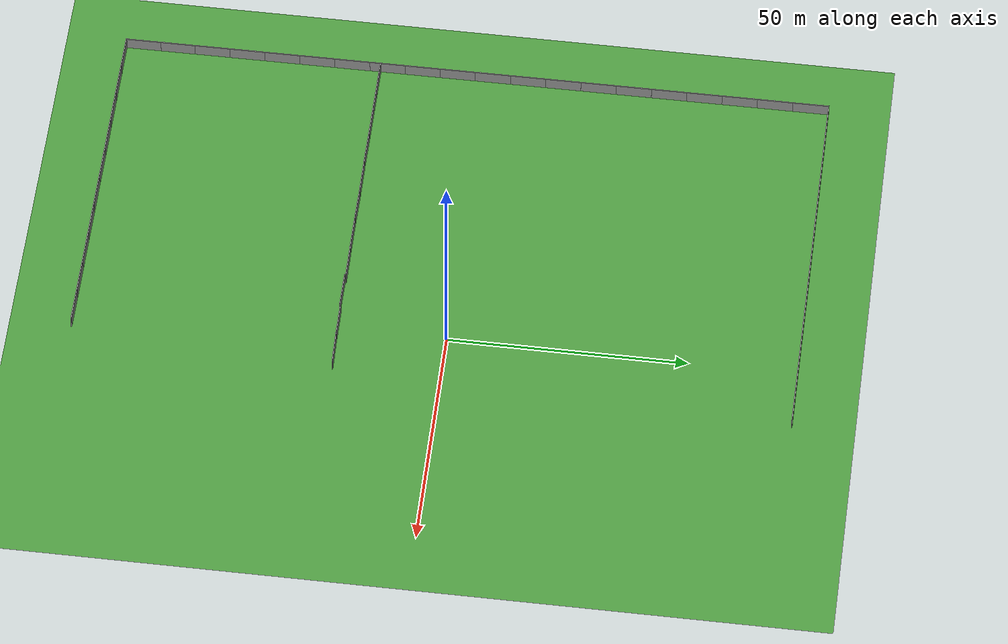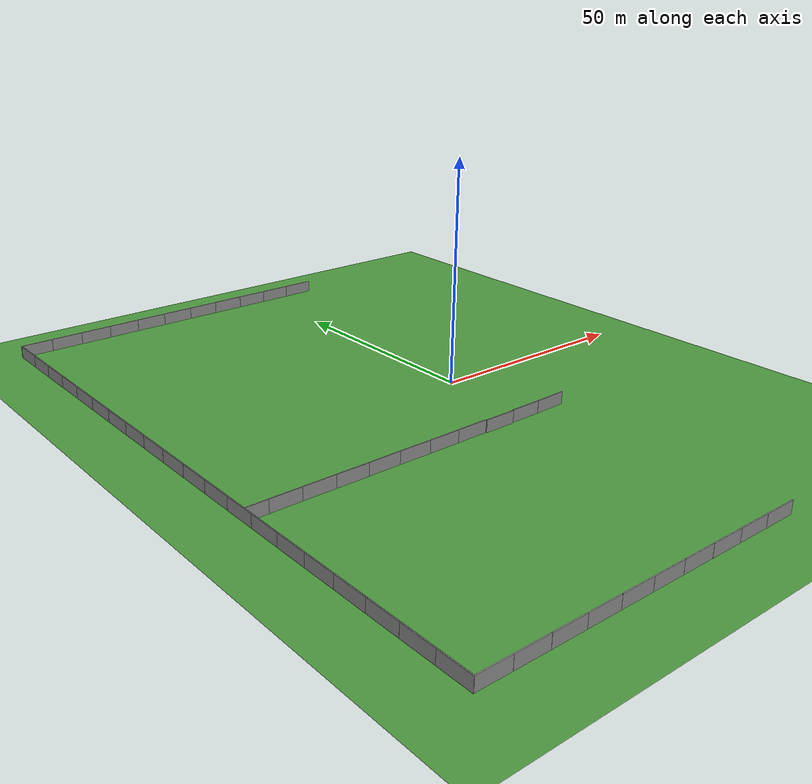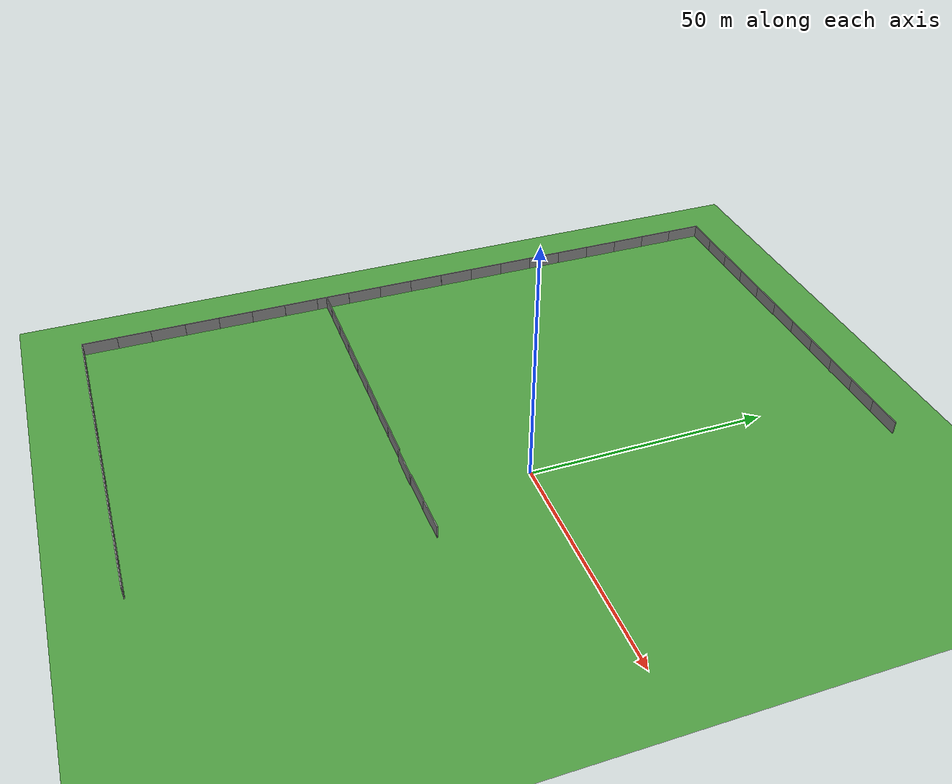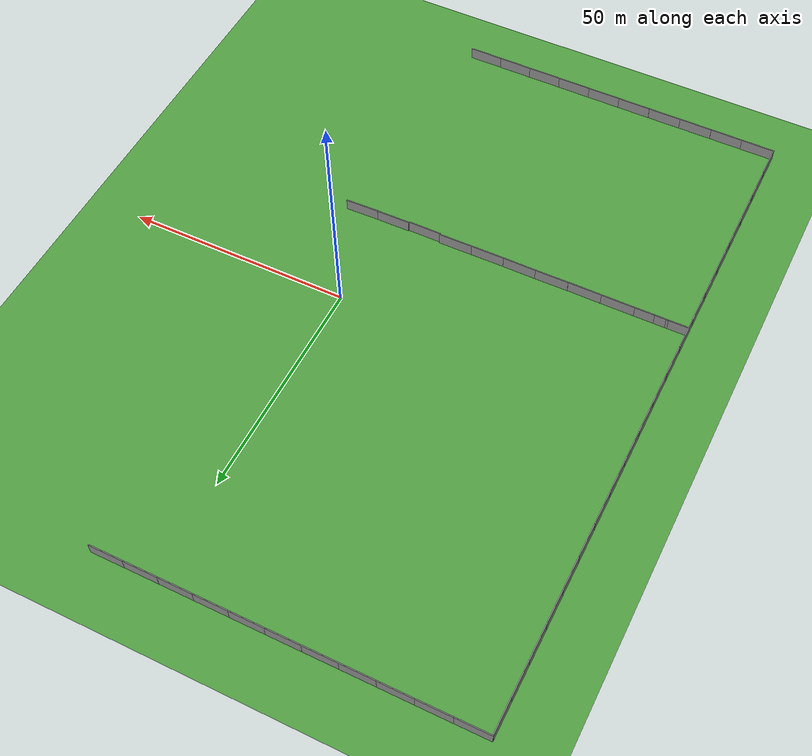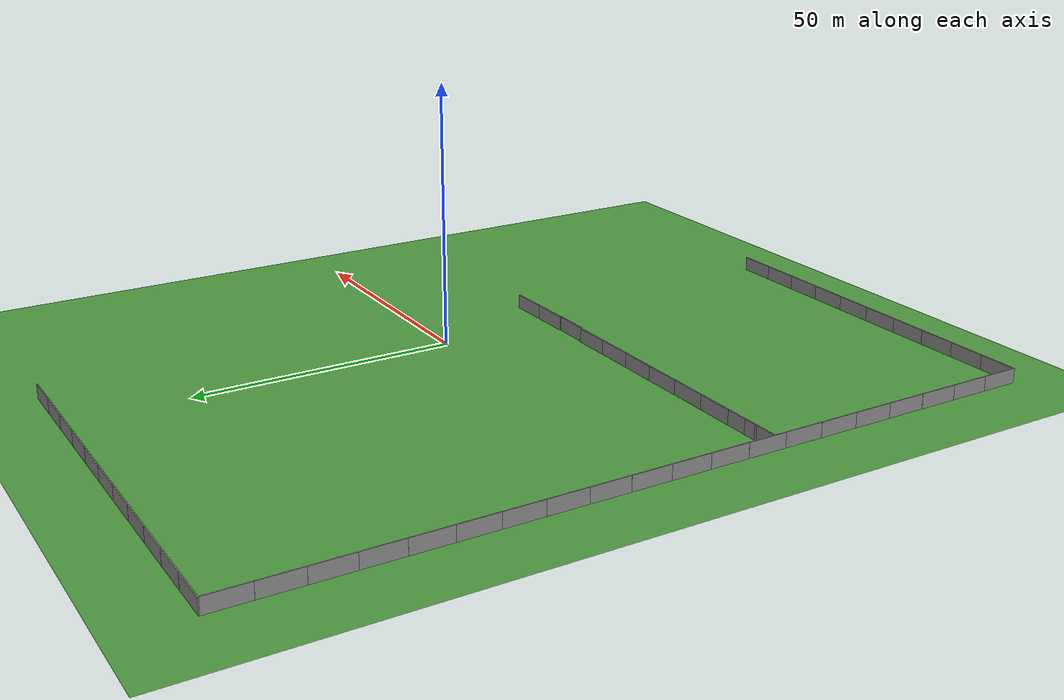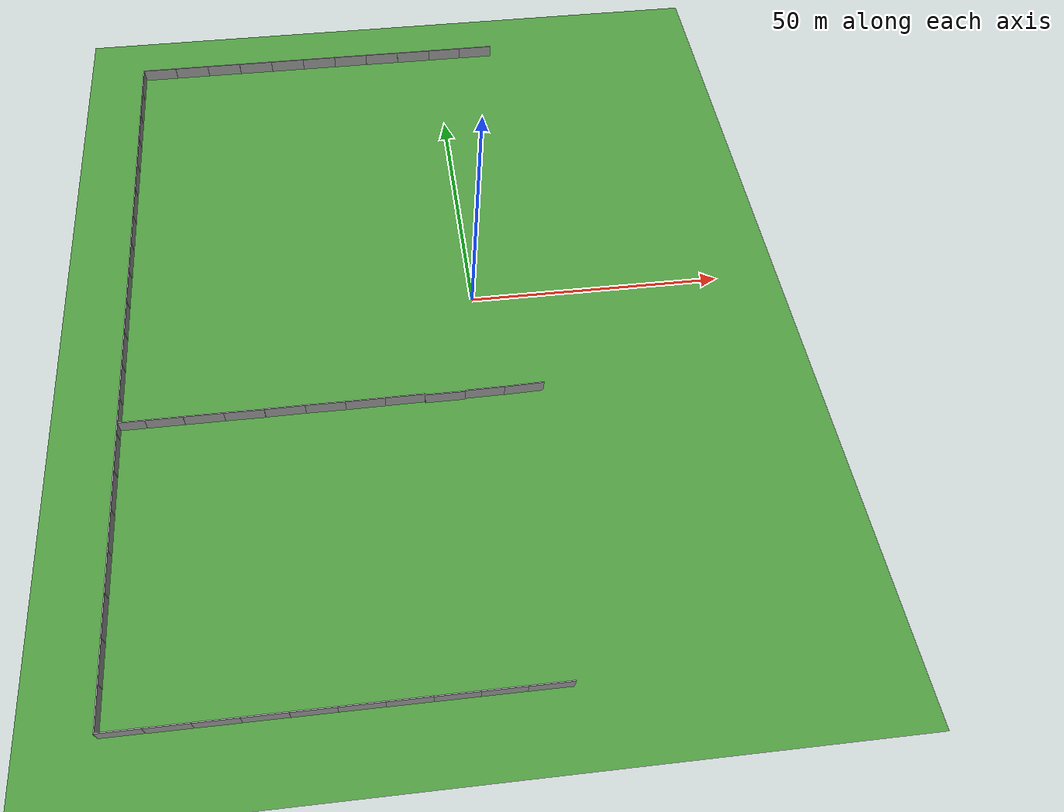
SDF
<sdf version="1.7">
 <world name="default">
  <model name="vrc_driving_terrain">
   <static>1</static>
   <link name="grass_plane">
    <collision name="collision">
     <geometry><plane><normal>0 0 1</normal><size>150 150</size></plane></geometry>
     <surface><friction><ode><mu>0.5</mu><mu2>0.5</mu2></ode></friction></surface>
    </collision>
    <visual name="visual_0">
     <cast_shadows>0</cast_shadows>
     <geometry><plane><normal>0 0 1</normal><size>150 150</size></plane></geometry>
     <material>
      <script>
       <uri>model://forest/vrc_driving_terrain/materials/scripts</uri>
       <uri>model://forest/vrc_driving_terrain/materials/textures</uri>
       <name>vrc/grass</name>
      </script>
     </material>
    </visual>
   </link>
   <pose>6.27224 -2.36963 0 0 -0 0</pose>
  </model>
  <model name="grey_wall_clone_10_clone_clone_clone_11_clone">
   <static>1</static>
   <link name="link">
    <pose>0 0 1.4 0 -0 0</pose>
    <collision name="collision"><geometry><box><size>7.5 0.2 2.8</size></box></geometry></collision>
    <visual name="visual">
     <cast_shadows>0</cast_shadows>
     <geometry><box><size>7.5 0.2 2.8</size></box></geometry>
     <material>
      <script>
       <uri>model://forest/grey_wall/materials/scripts</uri>
       <uri>model://forest/grey_wall/materials/textures</uri>
       <name>vrc/grey_wall</name>
      </script>
     </material>
    </visual>
   </link>
   <pose>-64.823 -77.1867 0 0 -0 0</pose>
  </model>
  <model name="grey_wall_clone_10_clone_clone_clone_11_clone_clone">
   <static>1</static>
   <link name="link">
    <pose>0 0 1.4 0 -0 0</pose>
    <collision name="collision"><geometry><box><size>7.5 0.2 2.8</size></box></geometry></collision>
    <visual name="visual">
     <cast_shadows>0</cast_shadows>
     <geometry><box><size>7.5 0.2 2.8</size></box></geometry>
     <material>
      <script>
       <uri>model://forest/grey_wall/materials/scripts</uri>
       <uri>model://forest/grey_wall/materials/textures</uri>
       <name>vrc/grey_wall</name>
      </script>
     </material>
    </visual>
   </link>
   <pose>-57.5346 -77.2024 0 0 -0 0</pose>
  </model>
  <model name="grey_wall_clone_10_clone_clone_clone_11_clone_clone_0">
   <static>1</static>
   <link name="link">
    <pose>0 0 1.4 0 -0 0</pose>
    <collision name="collision"><geometry><box><size>7.5 0.2 2.8</size></box></geometry></collision>
    <visual name="visual">
     <cast_shadows>0</cast_shadows>
     <geometry><box><size>7.5 0.2 2.8</size></box></geometry>
     <material>
      <script>
       <uri>model://forest/grey_wall/materials/scripts</uri>
       <uri>model://forest/grey_wall/materials/textures</uri>
       <name>vrc/grey_wall</name>
      </script>
     </material>
    </visual>
   </link>
   <pose>-50.026 -77.2083 0 0 -0 0</pose>
  </model>
  <model name="grey_wall_clone_10_clone_clone_clone_11_clone_clone_1">
   <static>1</static>
   <link name="link">
    <pose>0 0 1.4 0 -0 0</pose>
    <collision name="collision"><geometry><box><size>7.5 0.2 2.8</size></box></geometry></collision>
    <visual name="visual">
     <cast_shadows>0</cast_shadows>
     <geometry><box><size>7.5 0.2 2.8</size></box></geometry>
     <material>
      <script>
       <uri>model://forest/grey_wall/materials/scripts</uri>
       <uri>model://forest/grey_wall/materials/textures</uri>
       <name>vrc/grey_wall</name>
      </script>
     </material>
    </visual>
   </link>
   <pose>-42.5276 -77.1982 0 0 -0 0</pose>
  </model>
  <model name="grey_wall_clone_10_clone_clone_clone_11_clone_clone_2">
   <static>1</static>
   <link name="link">
    <pose>0 0 1.4 0 -0 0</pose>
    <collision name="collision"><geometry><box><size>7.5 0.2 2.8</size></box></geometry></collision>
    <visual name="visual">
     <cast_shadows>0</cast_shadows>
     <geometry><box><size>7.5 0.2 2.8</size></box></geometry>
     <material>
      <script>
       <uri>model://forest/grey_wall/materials/scripts</uri>
       <uri>model://forest/grey_wall/materials/textures</uri>
       <name>vrc/grey_wall</name>
      </script>
     </material>
    </visual>
   </link>
   <pose>-35.0175 -77.2078 0 0 -0 0</pose>
  </model>
  <model name="grey_wall_clone_10_clone_clone_clone_11_clone_clone_3">
   <static>1</static>
   <link name="link">
    <pose>0 0 1.4 0 -0 0</pose>
    <collision name="collision"><geometry><box><size>7.5 0.2 2.8</size></box></geometry></collision>
    <visual name="visual">
     <cast_shadows>0</cast_shadows>
     <geometry><box><size>7.5 0.2 2.8</size></box></geometry>
     <material>
      <script>
       <uri>model://forest/grey_wall/materials/scripts</uri>
       <uri>model://forest/grey_wall/materials/textures</uri>
       <name>vrc/grey_wall</name>
      </script>
     </material>
    </visual>
   </link>
   <pose>-27.5544 -77.2087 0 0 -0 0</pose>
  </model>
  <model name="grey_wall_clone_10_clone_clone_clone_11_clone_clone_4">
   <static>1</static>
   <link name="link">
    <pose>0 0 1.4 0 -0 0</pose>
    <collision name="collision"><geometry><box><size>7.5 0.2 2.8</size></box></geometry></collision>
    <visual name="visual">
     <cast_shadows>0</cast_shadows>
     <geometry><box><size>7.5 0.2 2.8</size></box></geometry>
     <material>
      <script>
       <uri>model://forest/grey_wall/materials/scripts</uri>
       <uri>model://forest/grey_wall/materials/textures</uri>
       <name>vrc/grey_wall</name>
      </script>
     </material>
    </visual>
   </link>
   <pose>-20.0557 -77.2142 0 0 -0 0</pose>
  </model>
  <model name="grey_wall_clone_10_clone_clone_clone_11_clone_clone_5">
   <static>1</static>
   <link name="link">
    <pose>0 0 1.4 0 -0 0</pose>
    <collision name="collision"><geometry><box><size>7.5 0.2 2.8</size></box></geometry></collision>
    <visual name="visual">
     <cast_shadows>0</cast_shadows>
     <geometry><box><size>7.5 0.2 2.8</size></box></geometry>
     <material>
      <script>
       <uri>model://forest/grey_wall/materials/scripts</uri>
       <uri>model://forest/grey_wall/materials/textures</uri>
       <name>vrc/grey_wall</name>
      </script>
     </material>
    </visual>
   </link>
   <pose>-12.5467 -77.224 0 0 -0 0</pose>
  </model>
  <model name="grey_wall_clone_10_clone_clone_clone_11_clone_clone_6">
   <static>1</static>
   <link name="link">
    <pose>0 0 1.4 0 -0 0</pose>
    <collision name="collision"><geometry><box><size>7.5 0.2 2.8</size></box></geometry></collision>
    <visual name="visual">
     <cast_shadows>0</cast_shadows>
     <geometry><box><size>7.5 0.2 2.8</size></box></geometry>
     <material>
      <script>
       <uri>model://forest/grey_wall/materials/scripts</uri>
       <uri>model://forest/grey_wall/materials/textures</uri>
       <name>vrc/grey_wall</name>
      </script>
     </material>
    </visual>
   </link>
   <pose>-5.04952 -77.2253 0 0 -0 0</pose>
  </model>
  <model name="grey_wall_clone_10_clone_clone_clone_11_clone_clone_7">
   <static>1</static>
   <link name="link">
    <pose>0 0 1.4 0 -0 0</pose>
    <collision name="collision"><geometry><box><size>7.5 0.2 2.8</size></box></geometry></collision>
    <visual name="visual">
     <cast_shadows>0</cast_shadows>
     <geometry><box><size>7.5 0.2 2.8</size></box></geometry>
     <material>
      <script>
       <uri>model://forest/grey_wall/materials/scripts</uri>
       <uri>model://forest/grey_wall/materials/textures</uri>
       <name>vrc/grey_wall</name>
      </script>
     </material>
    </visual>
   </link>
   <pose>2.45064 -77.2385 0 0 -0 0</pose>
  </model>
  <model name="grey_wall_clone_10_clone_clone_9">
   <static>1</static>
   <link name="link">
    <pose>0 0 1.4 0 -0 0</pose>
    <collision name="collision"><geometry><box><size>7.5 0.2 2.8</size></box></geometry></collision>
    <visual name="visual">
     <cast_shadows>0</cast_shadows>
     <geometry><box><size>7.5 0.2 2.8</size></box></geometry>
     <material>
      <script>
       <uri>model://forest/grey_wall/materials/scripts</uri>
       <uri>model://forest/grey_wall/materials/textures</uri>
       <name>vrc/grey_wall</name>
      </script>
     </material>
    </visual>
   </link>
   <pose>9.8792 72.6386 0 0 -0 0</pose>
  </model>
  <model name="grey_wall_clone_10_clone_clone_10">
   <static>1</static>
   <link name="link">
    <pose>0 0 1.4 0 -0 0</pose>
    <collision name="collision"><geometry><box><size>7.5 0.2 2.8</size></box></geometry></collision>
    <visual name="visual">
     <cast_shadows>0</cast_shadows>
     <geometry><box><size>7.5 0.2 2.8</size></box></geometry>
     <material>
      <script>
       <uri>model://forest/grey_wall/materials/scripts</uri>
       <uri>model://forest/grey_wall/materials/textures</uri>
       <name>vrc/grey_wall</name>
      </script>
     </material>
    </visual>
   </link>
   <pose>2.37975 72.635 0 0 -0 0</pose>
  </model>
  <model name="grey_wall_clone_10_clone_clone_11">
   <static>1</static>
   <link name="link">
    <pose>0 0 1.4 0 -0 0</pose>
    <collision name="collision"><geometry><box><size>7.5 0.2 2.8</size></box></geometry></collision>
    <visual name="visual">
     <cast_shadows>0</cast_shadows>
     <geometry><box><size>7.5 0.2 2.8</size></box></geometry>
     <material>
      <script>
       <uri>model://forest/grey_wall/materials/scripts</uri>
       <uri>model://forest/grey_wall/materials/textures</uri>
       <name>vrc/grey_wall</name>
      </script>
     </material>
    </visual>
   </link>
   <pose>-5.09788 72.6331 0 0 -0 0</pose>
  </model>
  <model name="grey_wall_clone_10_clone_clone_12">
   <static>1</static>
   <link name="link">
    <pose>0 0 1.4 0 -0 0</pose>
    <collision name="collision"><geometry><box><size>7.5 0.2 2.8</size></box></geometry></collision>
    <visual name="visual">
     <cast_shadows>0</cast_shadows>
     <geometry><box><size>7.5 0.2 2.8</size></box></geometry>
     <material>
      <script>
       <uri>model://forest/grey_wall/materials/scripts</uri>
       <uri>model://forest/grey_wall/materials/textures</uri>
       <name>vrc/grey_wall</name>
      </script>
     </material>
    </visual>
   </link>
   <pose>-12.6061 72.6425 0 0 -0 0</pose>
  </model>
  <model name="grey_wall_clone_10_clone_clone_13">
   <static>1</static>
   <link name="link">
    <pose>0 0 1.4 0 -0 0</pose>
    <collision name="collision"><geometry><box><size>7.5 0.2 2.8</size></box></geometry></collision>
    <visual name="visual">
     <cast_shadows>0</cast_shadows>
     <geometry><box><size>7.5 0.2 2.8</size></box></geometry>
     <material>
      <script>
       <uri>model://forest/grey_wall/materials/scripts</uri>
       <uri>model://forest/grey_wall/materials/textures</uri>
       <name>vrc/grey_wall</name>
      </script>
     </material>
    </visual>
   </link>
   <pose>-20.1193 72.6527 0 0 -0 0</pose>
  </model>
  <model name="grey_wall_clone_10_clone_clone_14">
   <static>1</static>
   <link name="link">
    <pose>0 0 1.4 0 -0 0</pose>
    <collision name="collision"><geometry><box><size>7.5 0.2 2.8</size></box></geometry></collision>
    <visual name="visual">
     <cast_shadows>0</cast_shadows>
     <geometry><box><size>7.5 0.2 2.8</size></box></geometry>
     <material>
      <script>
       <uri>model://forest/grey_wall/materials/scripts</uri>
       <uri>model://forest/grey_wall/materials/textures</uri>
       <name>vrc/grey_wall</name>
      </script>
     </material>
    </visual>
   </link>
   <pose>-27.6199 72.6558 0 0 -0 0</pose>
  </model>
  <model name="grey_wall_clone_10_clone_clone_15">
   <static>1</static>
   <link name="link">
    <pose>0 0 1.4 0 -0 0</pose>
    <collision name="collision"><geometry><box><size>7.5 0.2 2.8</size></box></geometry></collision>
    <visual name="visual">
     <cast_shadows>0</cast_shadows>
     <geometry><box><size>7.5 0.2 2.8</size></box></geometry>
     <material>
      <script>
       <uri>model://forest/grey_wall/materials/scripts</uri>
       <uri>model://forest/grey_wall/materials/textures</uri>
       <name>vrc/grey_wall</name>
      </script>
     </material>
    </visual>
   </link>
   <pose>-35.1125 72.6503 0 0 -0 0</pose>
  </model>
  <model name="grey_wall_clone_10_clone_clone_16">
   <static>1</static>
   <link name="link">
    <pose>0 0 1.4 0 -0 0</pose>
    <collision name="collision"><geometry><box><size>7.5 0.2 2.8</size></box></geometry></collision>
    <visual name="visual">
     <cast_shadows>0</cast_shadows>
     <geometry><box><size>7.5 0.2 2.8</size></box></geometry>
     <material>
      <script>
       <uri>model://forest/grey_wall/materials/scripts</uri>
       <uri>model://forest/grey_wall/materials/textures</uri>
       <name>vrc/grey_wall</name>
      </script>
     </material>
    </visual>
   </link>
   <pose>-42.606 72.6465 0 0 -0 0</pose>
  </model>
  <model name="grey_wall_clone_10_clone_clone_17">
   <static>1</static>
   <link name="link">
    <pose>0 0 1.4 0 -0 0</pose>
    <collision name="collision"><geometry><box><size>7.5 0.2 2.8</size></box></geometry></collision>
    <visual name="visual">
     <cast_shadows>0</cast_shadows>
     <geometry><box><size>7.5 0.2 2.8</size></box></geometry>
     <material>
      <script>
       <uri>model://forest/grey_wall/materials/scripts</uri>
       <uri>model://forest/grey_wall/materials/textures</uri>
       <name>vrc/grey_wall</name>
      </script>
     </material>
    </visual>
   </link>
   <pose>-50.1127 72.6522 0 0 -0 0</pose>
  </model>
  <model name="grey_wall_clone_10_clone_clone_18">
   <static>1</static>
   <link name="link">
    <pose>0 0 1.4 0 -0 0</pose>
    <collision name="collision"><geometry><box><size>7.5 0.2 2.8</size></box></geometry></collision>
    <visual name="visual">
     <cast_shadows>0</cast_shadows>
     <geometry><box><size>7.5 0.2 2.8</size></box></geometry>
     <material>
      <script>
       <uri>model://forest/grey_wall/materials/scripts</uri>
       <uri>model://forest/grey_wall/materials/textures</uri>
       <name>vrc/grey_wall</name>
      </script>
     </material>
    </visual>
   </link>
   <pose>-57.6217 72.6499 0 0 -0 0</pose>
  </model>
  <model name="grey_wall_clone_10_clone_clone_19">
   <static>1</static>
   <link name="link">
    <pose>0 0 1.4 0 -0 0</pose>
    <collision name="collision"><geometry><box><size>7.5 0.2 2.8</size></box></geometry></collision>
    <visual name="visual">
     <cast_shadows>0</cast_shadows>
     <geometry><box><size>7.5 0.2 2.8</size></box></geometry>
     <material>
      <script>
       <uri>model://forest/grey_wall/materials/scripts</uri>
       <uri>model://forest/grey_wall/materials/textures</uri>
       <name>vrc/grey_wall</name>
      </script>
     </material>
    </visual>
   </link>
   <pose>-65.1107 72.6364 0 0 -0 0</pose>
  </model>
  <model name="grey_wall_clone_10_clone_0_clone_5_clone_12_clone">
   <static>1</static>
   <link name="link">
    <pose>0 0 1.4 0 -0 0</pose>
    <collision name="collision"><geometry><box><size>7.5 0.2 2.8</size></box></geometry></collision>
    <visual name="visual">
     <cast_shadows>0</cast_shadows>
     <geometry><box><size>7.5 0.2 2.8</size></box></geometry>
     <material>
      <script>
       <uri>model://forest/grey_wall/materials/scripts</uri>
       <uri>model://forest/grey_wall/materials/textures</uri>
       <name>vrc/grey_wall</name>
      </script>
     </material>
    </visual>
   </link>
   <pose>-68.7572 68.7982 0 0 0 -1.56932</pose>
  </model>
  <model name="grey_wall_clone_10_clone_0_clone_5_clone_12_clone_0">
   <static>1</static>
   <link name="link">
    <pose>0 0 1.4 0 -0 0</pose>
    <collision name="collision"><geometry><box><size>7.5 0.2 2.8</size></box></geometry></collision>
    <visual name="visual">
     <cast_shadows>0</cast_shadows>
     <geometry><box><size>7.5 0.2 2.8</size></box></geometry>
     <material>
      <script>
       <uri>model://forest/grey_wall/materials/scripts</uri>
       <uri>model://forest/grey_wall/materials/textures</uri>
       <name>vrc/grey_wall</name>
      </script>
     </material>
    </visual>
   </link>
   <pose>-68.7575 61.2964 0 0 0 -1.56932</pose>
  </model>
  <model name="grey_wall_clone_10_clone_0_clone_5_clone_12_clone_1">
   <static>1</static>
   <link name="link">
    <pose>0 0 1.4 0 -0 0</pose>
    <collision name="collision"><geometry><box><size>7.5 0.2 2.8</size></box></geometry></collision>
    <visual name="visual">
     <cast_shadows>0</cast_shadows>
     <geometry><box><size>7.5 0.2 2.8</size></box></geometry>
     <material>
      <script>
       <uri>model://forest/grey_wall/materials/scripts</uri>
       <uri>model://forest/grey_wall/materials/textures</uri>
       <name>vrc/grey_wall</name>
      </script>
     </material>
    </visual>
   </link>
   <pose>-68.7526 53.7973 0 0 0 -1.56932</pose>
  </model>
  <model name="grey_wall_clone_10_clone_0_clone_5_clone_12_clone_2">
   <static>1</static>
   <link name="link">
    <pose>0 0 1.4 0 -0 0</pose>
    <collision name="collision"><geometry><box><size>7.5 0.2 2.8</size></box></geometry></collision>
    <visual name="visual">
     <cast_shadows>0</cast_shadows>
     <geometry><box><size>7.5 0.2 2.8</size></box></geometry>
     <material>
      <script>
       <uri>model://forest/grey_wall/materials/scripts</uri>
       <uri>model://forest/grey_wall/materials/textures</uri>
       <name>vrc/grey_wall</name>
      </script>
     </material>
    </visual>
   </link>
   <pose>-68.7342 46.3034 0 0 0 -1.56932</pose>
  </model>
  <model name="grey_wall_clone_10_clone_0_clone_5_clone_12_clone_3">
   <static>1</static>
   <link name="link">
    <pose>0 0 1.4 0 -0 0</pose>
    <collision name="collision"><geometry><box><size>7.5 0.2 2.8</size></box></geometry></collision>
    <visual name="visual">
     <cast_shadows>0</cast_shadows>
     <geometry><box><size>7.5 0.2 2.8</size></box></geometry>
     <material>
      <script>
       <uri>model://forest/grey_wall/materials/scripts</uri>
       <uri>model://forest/grey_wall/materials/textures</uri>
       <name>vrc/grey_wall</name>
      </script>
     </material>
    </visual>
   </link>
   <pose>-68.7287 38.8101 0 0 0 -1.56932</pose>
  </model>
  <model name="grey_wall_clone_10_clone_0_clone_5_clone_12_clone_4">
   <static>1</static>
   <link name="link">
    <pose>0 0 1.4 0 -0 0</pose>
    <collision name="collision"><geometry><box><size>7.5 0.2 2.8</size></box></geometry></collision>
    <visual name="visual">
     <cast_shadows>0</cast_shadows>
     <geometry><box><size>7.5 0.2 2.8</size></box></geometry>
     <material>
      <script>
       <uri>model://forest/grey_wall/materials/scripts</uri>
       <uri>model://forest/grey_wall/materials/textures</uri>
       <name>vrc/grey_wall</name>
      </script>
     </material>
    </visual>
   </link>
   <pose>-68.7201 31.3023 0 0 0 -1.56932</pose>
  </model>
  <model name="grey_wall_clone_10_clone_0_clone_5_clone_12_clone_5">
   <static>1</static>
   <link name="link">
    <pose>0 0 1.4 0 -0 0</pose>
    <collision name="collision"><geometry><box><size>7.5 0.2 2.8</size></box></geometry></collision>
    <visual name="visual">
     <cast_shadows>0</cast_shadows>
     <geometry><box><size>7.5 0.2 2.8</size></box></geometry>
     <material>
      <script>
       <uri>model://forest/grey_wall/materials/scripts</uri>
       <uri>model://forest/grey_wall/materials/textures</uri>
       <name>vrc/grey_wall</name>
      </script>
     </material>
    </visual>
   </link>
   <pose>-68.7145 23.7907 0 0 0 -1.56932</pose>
  </model>
  <model name="grey_wall_clone_10_clone_0_clone_5_clone_12_clone_6">
   <static>1</static>
   <link name="link">
    <pose>0 0 1.4 0 -0 0</pose>
    <collision name="collision"><geometry><box><size>7.5 0.2 2.8</size></box></geometry></collision>
    <visual name="visual">
     <cast_shadows>0</cast_shadows>
     <geometry><box><size>7.5 0.2 2.8</size></box></geometry>
     <material>
      <script>
       <uri>model://forest/grey_wall/materials/scripts</uri>
       <uri>model://forest/grey_wall/materials/textures</uri>
       <name>vrc/grey_wall</name>
      </script>
     </material>
    </visual>
   </link>
   <pose>-68.6998 16.2892 0 0 0 -1.56932</pose>
  </model>
  <model name="grey_wall_clone_10_clone_0_clone_5_clone_12_clone_7">
   <static>1</static>
   <link name="link">
    <pose>0 0 1.4 0 -0 0</pose>
    <collision name="collision"><geometry><box><size>7.5 0.2 2.8</size></box></geometry></collision>
    <visual name="visual">
     <cast_shadows>0</cast_shadows>
     <geometry><box><size>7.5 0.2 2.8</size></box></geometry>
     <material>
      <script>
       <uri>model://forest/grey_wall/materials/scripts</uri>
       <uri>model://forest/grey_wall/materials/textures</uri>
       <name>vrc/grey_wall</name>
      </script>
     </material>
    </visual>
   </link>
   <pose>-68.6952 8.77311 0 0 0 -1.56932</pose>
  </model>
  <model name="grey_wall_clone_10_clone_0_clone_5_clone_12_clone_8">
   <static>1</static>
   <link name="link">
    <pose>0 0 1.4 0 -0 0</pose>
    <collision name="collision"><geometry><box><size>7.5 0.2 2.8</size></box></geometry></collision>
    <visual name="visual">
     <cast_shadows>0</cast_shadows>
     <geometry><box><size>7.5 0.2 2.8</size></box></geometry>
     <material>
      <script>
       <uri>model://forest/grey_wall/materials/scripts</uri>
       <uri>model://forest/grey_wall/materials/textures</uri>
       <name>vrc/grey_wall</name>
      </script>
     </material>
    </visual>
   </link>
   <pose>-68.6796 1.26105 0 0 0 -1.56932</pose>
  </model>
  <model name="grey_wall_clone_10_clone_0_clone_5_clone_12_clone_9">
   <static>1</static>
   <link name="link">
    <pose>0 0 1.4 0 -0 0</pose>
    <collision name="collision"><geometry><box><size>7.5 0.2 2.8</size></box></geometry></collision>
    <visual name="visual">
     <cast_shadows>0</cast_shadows>
     <geometry><box><size>7.5 0.2 2.8</size></box></geometry>
     <material>
      <script>
       <uri>model://forest/grey_wall/materials/scripts</uri>
       <uri>model://forest/grey_wall/materials/textures</uri>
       <name>vrc/grey_wall</name>
      </script>
     </material>
    </visual>
   </link>
   <pose>-68.6605 -6.23997 0 0 0 -1.56932</pose>
  </model>
  <model name="grey_wall_clone_10_clone_0_clone_5_clone_12_clone_10">
   <static>1</static>
   <link name="link">
    <pose>0 0 1.4 0 -0 0</pose>
    <collision name="collision"><geometry><box><size>7.5 0.2 2.8</size></box></geometry></collision>
    <visual name="visual">
     <cast_shadows>0</cast_shadows>
     <geometry><box><size>7.5 0.2 2.8</size></box></geometry>
     <material>
      <script>
       <uri>model://forest/grey_wall/materials/scripts</uri>
       <uri>model://forest/grey_wall/materials/textures</uri>
       <name>vrc/grey_wall</name>
      </script>
     </material>
    </visual>
   </link>
   <pose>-68.6471 -13.729 0 0 0 -1.56932</pose>
  </model>
  <model name="grey_wall_clone_10_clone_0_clone_5_clone_12_clone_11">
   <static>1</static>
   <link name="link">
    <pose>0 0 1.4 0 -0 0</pose>
    <collision name="collision"><geometry><box><size>7.5 0.2 2.8</size></box></geometry></collision>
    <visual name="visual">
     <cast_shadows>0</cast_shadows>
     <geometry><box><size>7.5 0.2 2.8</size></box></geometry>
     <material>
      <script>
       <uri>model://forest/grey_wall/materials/scripts</uri>
       <uri>model://forest/grey_wall/materials/textures</uri>
       <name>vrc/grey_wall</name>
      </script>
     </material>
    </visual>
   </link>
   <pose>-68.6449 -21.2378 0 0 0 -1.56932</pose>
  </model>
  <model name="grey_wall_clone_10_clone_0_clone_5_clone_12_clone_12">
   <static>1</static>
   <link name="link">
    <pose>0 0 1.4 0 -0 0</pose>
    <collision name="collision"><geometry><box><size>7.5 0.2 2.8</size></box></geometry></collision>
    <visual name="visual">
     <cast_shadows>0</cast_shadows>
     <geometry><box><size>7.5 0.2 2.8</size></box></geometry>
     <material>
      <script>
       <uri>model://forest/grey_wall/materials/scripts</uri>
       <uri>model://forest/grey_wall/materials/textures</uri>
       <name>vrc/grey_wall</name>
      </script>
     </material>
    </visual>
   </link>
   <pose>-68.6227 -28.7312 0 0 0 -1.56932</pose>
  </model>
  <model name="grey_wall_clone_10_clone_0_clone_5_clone_12_clone_13">
   <static>1</static>
   <link name="link">
    <pose>0 0 1.4 0 -0 0</pose>
    <collision name="collision"><geometry><box><size>7.5 0.2 2.8</size></box></geometry></collision>
    <visual name="visual">
     <cast_shadows>0</cast_shadows>
     <geometry><box><size>7.5 0.2 2.8</size></box></geometry>
     <material>
      <script>
       <uri>model://forest/grey_wall/materials/scripts</uri>
       <uri>model://forest/grey_wall/materials/textures</uri>
       <name>vrc/grey_wall</name>
      </script>
     </material>
    </visual>
   </link>
   <pose>-68.621 -36.2363 0 0 0 -1.56932</pose>
  </model>
  <model name="grey_wall_clone_10_clone_0_clone_5_clone_12_clone_14">
   <static>1</static>
   <link name="link">
    <pose>0 0 1.4 0 -0 0</pose>
    <collision name="collision"><geometry><box><size>7.5 0.2 2.8</size></box></geometry></collision>
    <visual name="visual">
     <cast_shadows>0</cast_shadows>
     <geometry><box><size>7.5 0.2 2.8</size></box></geometry>
     <material>
      <script>
       <uri>model://forest/grey_wall/materials/scripts</uri>
       <uri>model://forest/grey_wall/materials/textures</uri>
       <name>vrc/grey_wall</name>
      </script>
     </material>
    </visual>
   </link>
   <pose>-68.5988 -43.7335 0 0 0 -1.56932</pose>
  </model>
  <model name="grey_wall_clone_10_clone_0_clone_5_clone_12_clone_15">
   <static>1</static>
   <link name="link">
    <pose>0 0 1.4 0 -0 0</pose>
    <collision name="collision"><geometry><box><size>7.5 0.2 2.8</size></box></geometry></collision>
    <visual name="visual">
     <cast_shadows>0</cast_shadows>
     <geometry><box><size>7.5 0.2 2.8</size></box></geometry>
     <material>
      <script>
       <uri>model://forest/grey_wall/materials/scripts</uri>
       <uri>model://forest/grey_wall/materials/textures</uri>
       <name>vrc/grey_wall</name>
      </script>
     </material>
    </visual>
   </link>
   <pose>-68.5877 -51.2413 0 0 0 -1.56932</pose>
  </model>
  <model name="grey_wall_clone_10_clone_0_clone_5_clone_12_clone_16">
   <static>1</static>
   <link name="link">
    <pose>0 0 1.4 0 -0 0</pose>
    <collision name="collision"><geometry><box><size>7.5 0.2 2.8</size></box></geometry></collision>
    <visual name="visual">
     <cast_shadows>0</cast_shadows>
     <geometry><box><size>7.5 0.2 2.8</size></box></geometry>
     <material>
      <script>
       <uri>model://forest/grey_wall/materials/scripts</uri>
       <uri>model://forest/grey_wall/materials/textures</uri>
       <name>vrc/grey_wall</name>
      </script>
     </material>
    </visual>
   </link>
   <pose>-68.5839 -58.7528 0 0 0 -1.56932</pose>
  </model>
  <model name="grey_wall_clone_10_clone_0_clone_5_clone_12_clone_17">
   <static>1</static>
   <link name="link">
    <pose>0 0 1.4 0 -0 0</pose>
    <collision name="collision"><geometry><box><size>7.5 0.2 2.8</size></box></geometry></collision>
    <visual name="visual">
     <cast_shadows>0</cast_shadows>
     <geometry><box><size>7.5 0.2 2.8</size></box></geometry>
     <material>
      <script>
       <uri>model://forest/grey_wall/materials/scripts</uri>
       <uri>model://forest/grey_wall/materials/textures</uri>
       <name>vrc/grey_wall</name>
      </script>
     </material>
    </visual>
   </link>
   <pose>-68.5608 -66.2516 0 0 0 -1.56932</pose>
  </model>
  <model name="grey_wall_clone_10_clone_0_clone_5_clone_12_clone_18">
   <static>1</static>
   <link name="link">
    <pose>0 0 1.4 0 -0 0</pose>
    <collision name="collision"><geometry><box><size>7.5 0.2 2.8</size></box></geometry></collision>
    <visual name="visual">
     <cast_shadows>0</cast_shadows>
     <geometry><box><size>7.5 0.2 2.8</size></box></geometry>
     <material>
      <script>
       <uri>model://forest/grey_wall/materials/scripts</uri>
       <uri>model://forest/grey_wall/materials/textures</uri>
       <name>vrc/grey_wall</name>
      </script>
     </material>
    </visual>
   </link>
   <pose>-68.5453 -73.5293 0 0 0 -1.56932</pose>
  </model>
  <model name="grey_wall_clone_10_clone_clone_8_clone_clone_clone_5_clone_0_clone_1_clone">
   <static>1</static>
   <link name="link">
    <pose>0 0 1.4 0 -0 0</pose>
    <collision name="collision"><geometry><box><size>7.5 0.2 2.8</size></box></geometry></collision>
    <visual name="visual">
     <cast_shadows>0</cast_shadows>
     <geometry><box><size>7.5 0.2 2.8</size></box></geometry>
     <material>
      <script>
       <uri>model://forest/grey_wall/materials/scripts</uri>
       <uri>model://forest/grey_wall/materials/textures</uri>
       <name>vrc/grey_wall</name>
      </script>
     </material>
    </visual>
   </link>
   <pose>6.72673 -22.4566 0 0 -0 0.02642</pose>
  </model>
  <model name="grey_wall_clone_10_clone_clone_8_clone_clone_clone_5_clone_0_clone_1_clone_0">
   <static>1</static>
   <link name="link">
    <pose>0 0 1.4 0 -0 0</pose>
    <collision name="collision"><geometry><box><size>7.5 0.2 2.8</size></box></geometry></collision>
    <visual name="visual">
     <cast_shadows>0</cast_shadows>
     <geometry><box><size>7.5 0.2 2.8</size></box></geometry>
     <material>
      <script>
       <uri>model://forest/grey_wall/materials/scripts</uri>
       <uri>model://forest/grey_wall/materials/textures</uri>
       <name>vrc/grey_wall</name>
      </script>
     </material>
    </visual>
   </link>
   <pose>-0.743078 -22.5676 0 0 -0 0.008592</pose>
  </model>
  <model name="grey_wall_clone_10_clone_clone_8_clone_clone_clone_5_clone_0_clone_1_clone_1">
   <static>1</static>
   <link name="link">
    <pose>0 0 1.4 0 -0 0</pose>
    <collision name="collision"><geometry><box><size>7.5 0.2 2.8</size></box></geometry></collision>
    <visual name="visual">
     <cast_shadows>0</cast_shadows>
     <geometry><box><size>7.5 0.2 2.8</size></box></geometry>
     <material>
      <script>
       <uri>model://forest/grey_wall/materials/scripts</uri>
       <uri>model://forest/grey_wall/materials/textures</uri>
       <name>vrc/grey_wall</name>
      </script>
     </material>
    </visual>
   </link>
   <pose>-8.26138 -22.7738 0 0 0 -0.001234</pose>
  </model>
  <model name="grey_wall_clone_10_clone_clone_8_clone_clone_clone_5_clone_0_clone_1_clone_2">
   <static>1</static>
   <link name="link">
    <pose>0 0 1.4 0 -0 0</pose>
    <collision name="collision"><geometry><box><size>7.5 0.2 2.8</size></box></geometry></collision>
    <visual name="visual">
     <cast_shadows>0</cast_shadows>
     <geometry><box><size>7.5 0.2 2.8</size></box></geometry>
     <material>
      <script>
       <uri>model://forest/grey_wall/materials/scripts</uri>
       <uri>model://forest/grey_wall/materials/textures</uri>
       <name>vrc/grey_wall</name>
      </script>
     </material>
    </visual>
   </link>
   <pose>-15.7412 -22.5766 -0 0 -0 0.007035</pose>
  </model>
  <model name="grey_wall_clone_10_clone_clone_8_clone_clone_clone_5_clone_0_clone_1_clone_3">
   <static>1</static>
   <link name="link">
    <pose>0 0 1.4 0 -0 0</pose>
    <collision name="collision"><geometry><box><size>7.5 0.2 2.8</size></box></geometry></collision>
    <visual name="visual">
     <cast_shadows>0</cast_shadows>
     <geometry><box><size>7.5 0.2 2.8</size></box></geometry>
     <material>
      <script>
       <uri>model://forest/grey_wall/materials/scripts</uri>
       <uri>model://forest/grey_wall/materials/textures</uri>
       <name>vrc/grey_wall</name>
      </script>
     </material>
    </visual>
   </link>
   <pose>-23.2207 -22.6392 0 0 -0 0.005572</pose>
  </model>
  <model name="grey_wall_clone_10_clone_clone_8_clone_clone_clone_5_clone_0_clone_1_clone_4">
   <static>1</static>
   <link name="link">
    <pose>0 0 1.4 0 -0 0</pose>
    <collision name="collision"><geometry><box><size>7.5 0.2 2.8</size></box></geometry></collision>
    <visual name="visual">
     <cast_shadows>0</cast_shadows>
     <geometry><box><size>7.5 0.2 2.8</size></box></geometry>
     <material>
      <script>
       <uri>model://forest/grey_wall/materials/scripts</uri>
       <uri>model://forest/grey_wall/materials/textures</uri>
       <name>vrc/grey_wall</name>
      </script>
     </material>
    </visual>
   </link>
   <pose>-30.6528 -22.6406 0 0 0 -0.005969</pose>
  </model>
  <model name="grey_wall_clone_10_clone_clone_8_clone_clone_clone_5_clone_0_clone_1_clone_5">
   <static>1</static>
   <link name="link">
    <pose>0 0 1.4 0 -0 0</pose>
    <collision name="collision"><geometry><box><size>7.5 0.2 2.8</size></box></geometry></collision>
    <visual name="visual">
     <cast_shadows>0</cast_shadows>
     <geometry><box><size>7.5 0.2 2.8</size></box></geometry>
     <material>
      <script>
       <uri>model://forest/grey_wall/materials/scripts</uri>
       <uri>model://forest/grey_wall/materials/textures</uri>
       <name>vrc/grey_wall</name>
      </script>
     </material>
    </visual>
   </link>
   <pose>-38.1122 -22.6503 0 0 -0 0.007612</pose>
  </model>
  <model name="grey_wall_clone_10_clone_clone_8_clone_clone_clone_5_clone_0_clone_1_clone_6">
   <static>1</static>
   <link name="link">
    <pose>0 0 1.4 0 -0 0</pose>
    <collision name="collision"><geometry><box><size>7.5 0.2 2.8</size></box></geometry></collision>
    <visual name="visual">
     <cast_shadows>0</cast_shadows>
     <geometry><box><size>7.5 0.2 2.8</size></box></geometry>
     <material>
      <script>
       <uri>model://forest/grey_wall/materials/scripts</uri>
       <uri>model://forest/grey_wall/materials/textures</uri>
       <name>vrc/grey_wall</name>
      </script>
     </material>
    </visual>
   </link>
   <pose>-45.6219 -22.6897 0 0 0 -0.006211</pose>
  </model>
  <model name="grey_wall_clone_10_clone_clone_8_clone_clone_clone_5_clone_0_clone_1_clone_7">
   <static>1</static>
   <link name="link">
    <pose>0 0 1.4 0 -0 0</pose>
    <collision name="collision"><geometry><box><size>7.5 0.2 2.8</size></box></geometry></collision>
    <visual name="visual">
     <cast_shadows>0</cast_shadows>
     <geometry><box><size>7.5 0.2 2.8</size></box></geometry>
     <material>
      <script>
       <uri>model://forest/grey_wall/materials/scripts</uri>
       <uri>model://forest/grey_wall/materials/textures</uri>
       <name>vrc/grey_wall</name>
      </script>
     </material>
    </visual>
   </link>
   <pose>-53.0573 -22.6744 0 0 -0 0.00032</pose>
  </model>
  <model name="grey_wall_clone_10_clone_clone_8_clone_clone_clone_5_clone_0_clone_1_clone_8">
   <static>1</static>
   <link name="link">
    <pose>0 0 1.4 0 -0 0</pose>
    <collision name="collision"><geometry><box><size>7.5 0.2 2.8</size></box></geometry></collision>
    <visual name="visual">
     <cast_shadows>0</cast_shadows>
     <geometry><box><size>7.5 0.2 2.8</size></box></geometry>
     <material>
      <script>
       <uri>model://forest/grey_wall/materials/scripts</uri>
       <uri>model://forest/grey_wall/materials/textures</uri>
       <name>vrc/grey_wall</name>
      </script>
     </material>
    </visual>
   </link>
   <pose>-60.4628 -22.6864 0 0 -0 0.000106</pose>
  </model>
  <model name="grey_wall_clone_10_clone_clone_8_clone_clone_clone_5_clone_0_clone_1_clone_9">
   <static>1</static>
   <link name="link">
    <pose>0 0 1.4 0 -0 0</pose>
    <collision name="collision"><geometry><box><size>7.5 0.2 2.8</size></box></geometry></collision>
    <visual name="visual">
     <cast_shadows>0</cast_shadows>
     <geometry><box><size>7.5 0.2 2.8</size></box></geometry>
     <material>
      <script>
       <uri>model://forest/grey_wall/materials/scripts</uri>
       <uri>model://forest/grey_wall/materials/textures</uri>
       <name>vrc/grey_wall</name>
      </script>
     </material>
    </visual>
   </link>
   <pose>-64.9312 -22.6918 0 0 -0 0.004092</pose>
  </model>
 </world>
</sdf>
